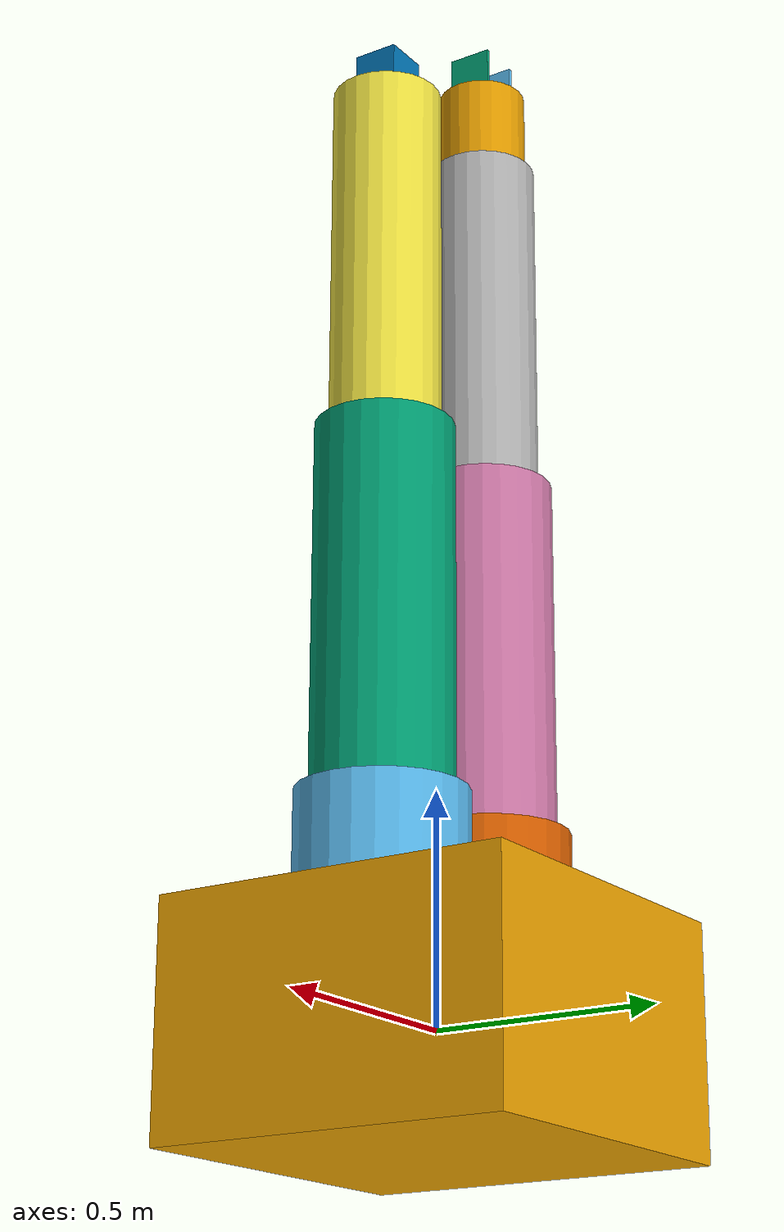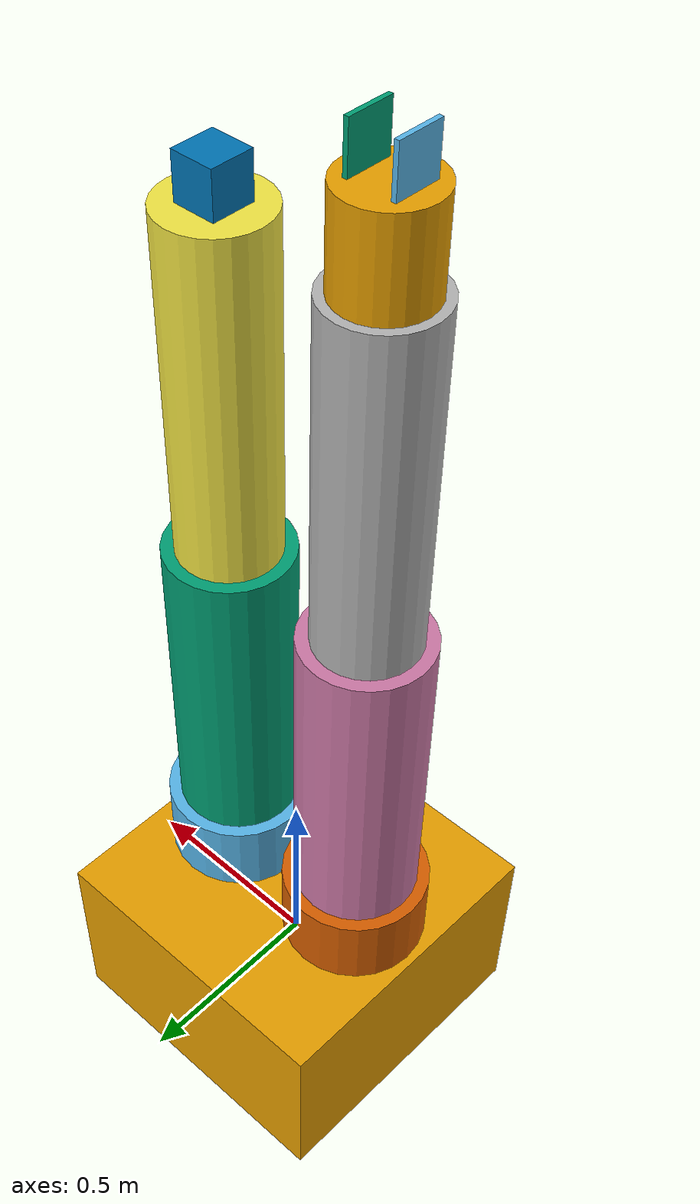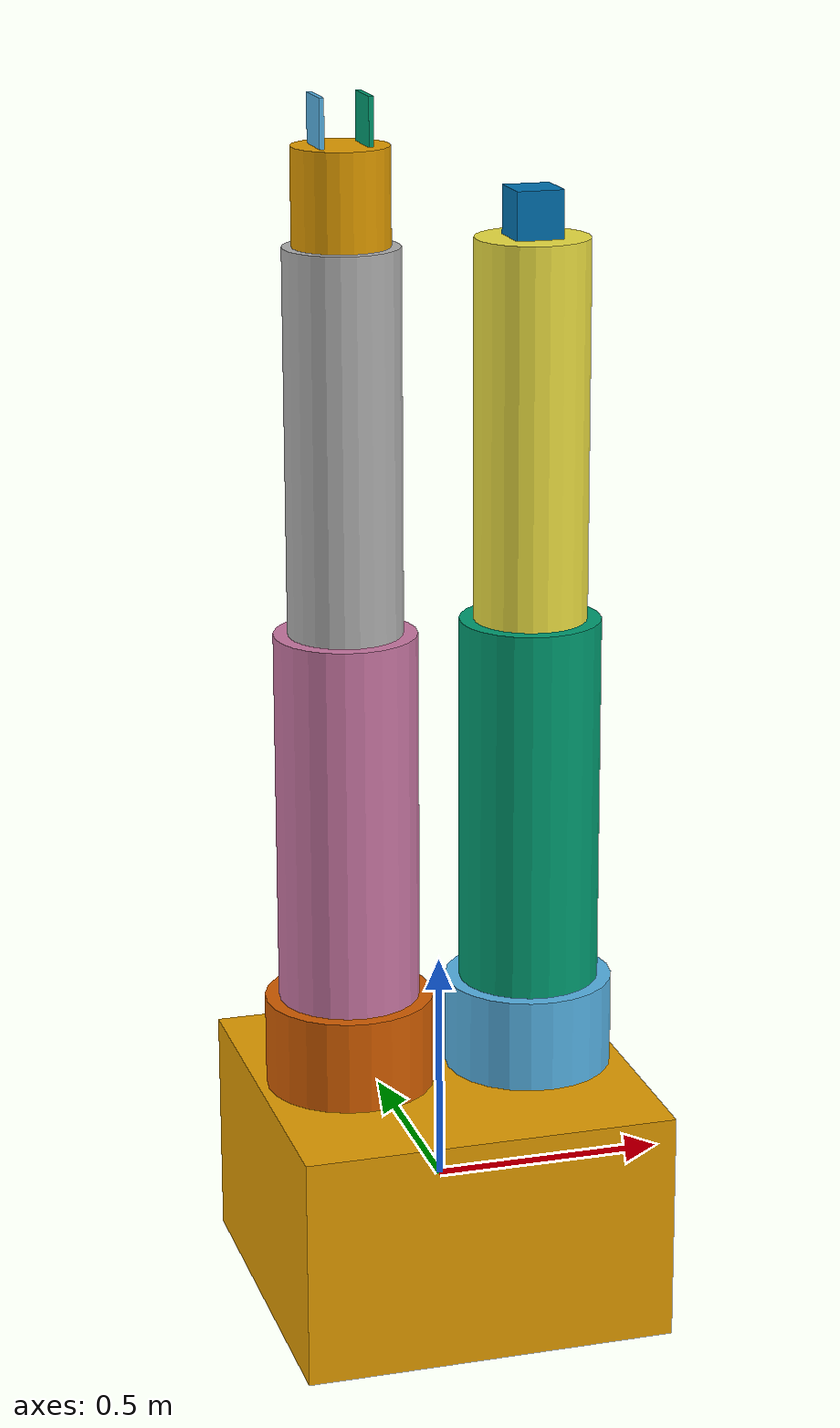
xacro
<?xml version="1.0" ?>
<robot name="htf" xmlns:xacro="http://www.ros.org/wiki/xacro">

  <!-- BGN - Include -->
  <xacro:include filename="$(find htf_description)/urdf/linkjoint.xacro" />
  <!-- END - Include -->

  <!-- BGN - Robot description -->

    <m_link_box         name="base_link"
                        origin_rpy="0 0 0" origin_xyz="0 0 0"
                        mass="300"
                        ixx="22.25" ixy="0" ixz="0"
                        iyy="22.25" iyz="0"
                        izz="32"
                        size="0.8 0.8 0.5"/>

    <m_joint            name="base_link__link_01" type="revolute"
                        axis_xyz="0 0 1"
                        origin_rpy="0 0 0" origin_xyz="0.2 0 0.25"
                        parent_link="base_link" child_link="link_01"
                        limit_e="1000" limit_l="-3.14" limit_u="3.14" limit_v="0.5"/>

    <m_link_cylinder    name="link_01"
                        origin_rpy="0 0 0" origin_xyz="0 0 0.1"
                        mass="20"
                        ixx="0.4287" ixy="0" ixz="0"
                        iyy="0.4287" iyz="0"
                        izz="0.2287"
                        radius="0.18" length="0.2"/>

    <m_joint            name="link_01__link_02" type="revolute"
                        axis_xyz="1 0 0"
                        origin_rpy="0 0 0" origin_xyz="0 0 0.2"
                        parent_link="link_01" child_link="link_02"
                        limit_e="1000" limit_l="-1.5" limit_u="1.5" limit_v="0.5"/>

    <m_link_cylinder    name="link_02"
                        origin_rpy="0 0 0" origin_xyz="0 0 0.4"
                        mass="11.4"
                        ixx="2.4961" ixy="0" ixz="0"
                        iyy="2.4961" iyz="0"
                        izz="0.6721"
                        radius="0.15" length="0.8"/>

    <m_joint            name="link_02__link_03" type="revolute"
                        axis_xyz="1 0 0"
                        origin_rpy="0 0 0" origin_xyz="0 0 0.8"
                        parent_link="link_02" child_link="link_03"
                        limit_e="1000" limit_l="-1.5" limit_u="1.5" limit_v="0.5"/>

    <m_link_cylinder    name="link_03"
                        origin_rpy="0 0 0" origin_xyz="0 0 0.4"
                        mass="7.2"
                        ixx="1.5619" ixy="0" ixz="0"
                        iyy="1.5619" iyz="0"
                        izz="0.4099"
                        radius="0.12" length="0.8"/>

    <m_joint            name="link_03__link_04" type="revolute"
                        axis_xyz="0 0 1"
                        origin_rpy="0 0 0" origin_xyz="0 0 0.8"
                        parent_link="link_03" child_link="link_04"
                        limit_e="1000" limit_l="0" limit_u="0" limit_v="0.5"/>

    <m_link_box         name="link_04"
                        origin_rpy="0 0 0" origin_xyz="0 0 0.05"
                        mass="0.1"
                        ixx="0.00016667" ixy="0" ixz="0"
                        iyy="0.00016667" iyz="0"
                        izz="0.00016667"
                        size="0.1 0.1 0.1"/>

    <m_joint            name="base_link__link_05" type="revolute"
                        axis_xyz="0 0 1"
                        origin_rpy="0 0 0" origin_xyz="-0.2 0 0.25"
                        parent_link="base_link" child_link="link_05"
                        limit_e="1000" limit_l="-3.14" limit_u="3.14" limit_v="0.5"/>

    <m_link_cylinder    name="link_05"
                        origin_rpy="0 0 0" origin_xyz="0 0 0.1"
                        mass="20"
                        ixx="0.4287" ixy="0" ixz="0"
                        iyy="0.4287" iyz="0"
                        izz="0.2287"
                        radius="0.18" length="0.2"/>

    <m_joint            name="link_05__link_06" type="revolute"
                        axis_xyz="1 0 0"
                        origin_rpy="0 0 0" origin_xyz="0 0 0.2"
                        parent_link="link_05" child_link="link_06"
                        limit_e="1000" limit_l="-1.5" limit_u="1.5" limit_v="0.5"/>

    <m_link_cylinder    name="link_06"
                        origin_rpy="0 0 0" origin_xyz="0 0 0.4"
                        mass="11.4"
                        ixx="2.4961" ixy="0" ixz="0"
                        iyy="2.4961" iyz="0"
                        izz="0.6721"
                        radius="0.15" length="0.8"/>

    <m_joint            name="link_06__link_07" type="revolute"
                        axis_xyz="1 0 0"
                        origin_rpy="0 0 0" origin_xyz="0 0 0.8"
                        parent_link="link_06" child_link="link_07"
                        limit_e="1000" limit_l="-1.5" limit_u="1.5" limit_v="0.5"/>

    <m_link_cylinder    name="link_07"
                        origin_rpy="0 0 0" origin_xyz="0 0 0.4"
                        mass="7.2"
                        ixx="1.5619" ixy="0" ixz="0"
                        iyy="1.5619" iyz="0"
                        izz="0.4099"
                        radius="0.12" length="0.8"/>

    <m_joint            name="link_07__link_08" type="revolute"
                        axis_xyz="0 0 1"
                        origin_rpy="0 0 0" origin_xyz="0 0 0.8"
                        parent_link="link_07" child_link="link_08"
                        limit_e="1000" limit_l="-3.14" limit_u="3.15" limit_v="0.5"/>

    <m_link_cylinder    name="link_08"
                        origin_rpy="0 0 0" origin_xyz="0 0 0.1"
                        mass="1.256"
                        ixx="0.0199" ixy="0" ixz="0"
                        iyy="0.0199" iyz="0"
                        izz="0.0063"
                        radius="0.1" length="0.2"/>

    <m_joint            name="link_08__link_09" type="revolute"
                        axis_xyz="0 1 0"
                        origin_rpy="0 0 0" origin_xyz="-0.05 0 0.2"
                        parent_link="link_08" child_link="link_09"
                        limit_e="0" limit_l="0" limit_u="0.4" limit_v="0.5"/>

    <m_link_box         name="link_09"
                        origin_rpy="0 0 0" origin_xyz="0 0 0.05"
                        mass="0.1"
                        ixx="0.00016667" ixy="0" ixz="0"
                        iyy="0.00008417" iyz="0"
                        izz="0.00008417"
                        size="0.01 0.1 0.1"/>

    <m_joint            name="link_08__link_10" type="revolute"
                        axis_xyz="0 1 0"
                        origin_rpy="0 0 0" origin_xyz="0.05 0 0.2"
                        parent_link="link_08" child_link="link_10"
                        limit_e="0" limit_l="-0.4" limit_u="0" limit_v="0.5"/>

    <m_link_box         name="link_10"
                        origin_rpy="0 0 0" origin_xyz="0 0 0.05"
                        mass="0.1"
                        ixx="0.00016667" ixy="0" ixz="0"
                        iyy="0.00008417" iyz="0"
                        izz="0.00008417"
                        size="0.01 0.1 0.1"/>

    <gazebo>
        <plugin name="gazebo_ros_control" filename="libgazebo_ros_control.so">
        </plugin>
    </gazebo>
</robot>

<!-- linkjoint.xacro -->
<robot xmlns:xacro="http://www.ros.org/wiki/xacro">

  <xacro:macro name="m_joint" params="name type axis_xyz origin_rpy origin_xyz limit_e limit_l limit_u limit_v parent_link child_link">
    <joint name="${name}" type="${type}">
      <axis xyz="${axis_xyz}" />
      <limit effort="${limit_e}" lower="${limit_l}" upper="${limit_u}" velocity="${limit_v}" />
      <origin rpy="${origin_rpy}" xyz="${origin_xyz}" />
      <parent link="${parent_link}" />
      <child link="${child_link}" />
    </joint>
    <transmission name="trans_${name}">
      <type>transmission_interface/SimpleTransmission</type>
      <joint name="${name}">
        <hardwareInterface>hardware_interface/EffortJointInterface</hardwareInterface>
      </joint>
      <actuator name="motor_${name}">
        <hardwareInterface>hardware_interface/EffortJointInterface</hardwareInterface>
        <mechanicalReduction>1</mechanicalReduction>
      </actuator>
    </transmission>
  </xacro:macro>

  <xacro:macro name="m_link_cylinder" params="name origin_xyz origin_rpy radius length mass ixx ixy ixz iyy iyz izz">
    <link name="${name}">
     <inertial>
        <mass value="${mass}" />
        <origin rpy="${origin_rpy}" xyz="${origin_xyz}" />
        <inertia ixx="${ixx}" ixy="${ixy}" ixz="${ixz}" iyy="${iyy}" iyz="${iyz}" izz="${izz}" />
    </inertial>
    <collision>
        <origin rpy="${origin_rpy}" xyz="${origin_xyz}" />
        <geometry>
          <cylinder radius="${radius}" length="${length}" />
        </geometry>
    </collision>
    <visual>
        <origin rpy="${origin_rpy}" xyz="${origin_xyz}" />
        <geometry>
          <cylinder radius="${radius}" length="${length}" />
        </geometry>
    </visual>
    </link>
  </xacro:macro>

  <xacro:macro name="m_link_box" params="name origin_xyz origin_rpy size mass ixx ixy ixz iyy iyz izz">
    <link name="${name}">
     <inertial>
        <mass value="${mass}" />
        <origin rpy="${origin_rpy}" xyz="${origin_xyz}" />
        <inertia ixx="${ixx}" ixy="${ixy}" ixz="${ixz}" iyy="${iyy}" iyz="${iyz}" izz="${izz}" />
    </inertial>
    <collision>
        <origin rpy="${origin_rpy}" xyz="${origin_xyz}" />
        <geometry>
          <box size="${size}" />
        </geometry>
    </collision>
    <visual>
        <origin rpy="${origin_rpy}" xyz="${origin_xyz}" />
        <geometry>
          <box size="${size}" />
        </geometry>
    </visual>
    </link>
  </xacro:macro>

</robot>
